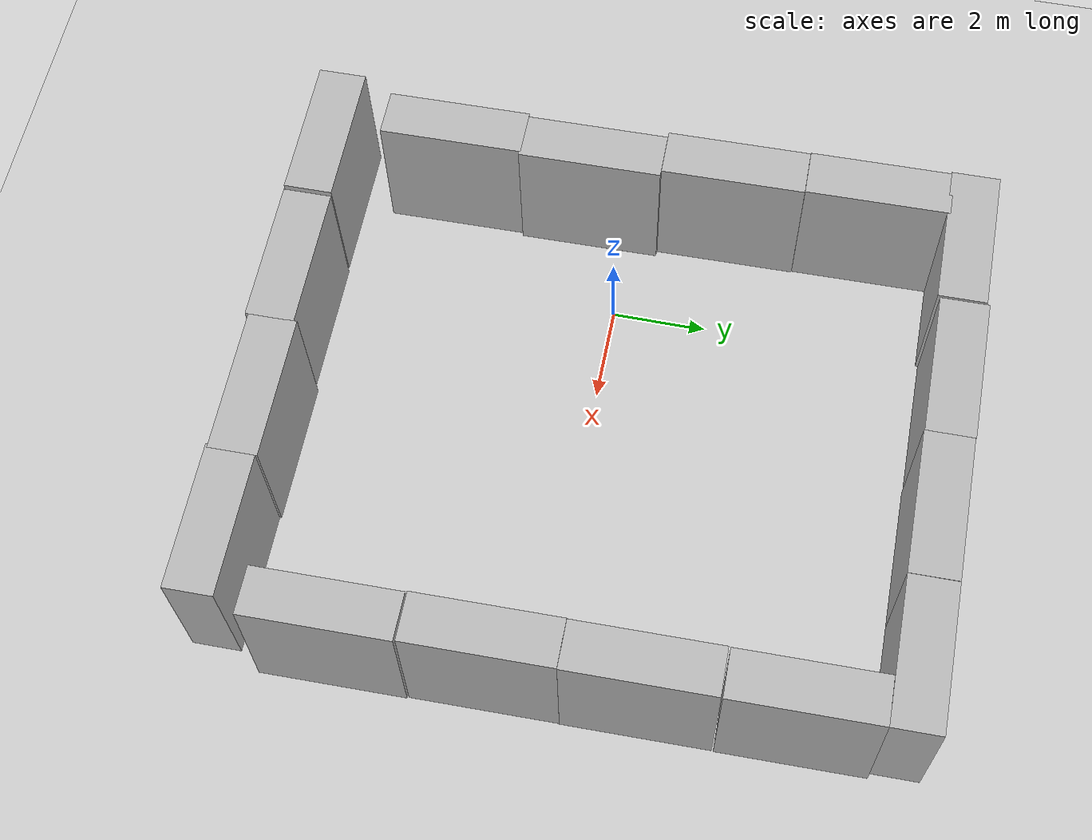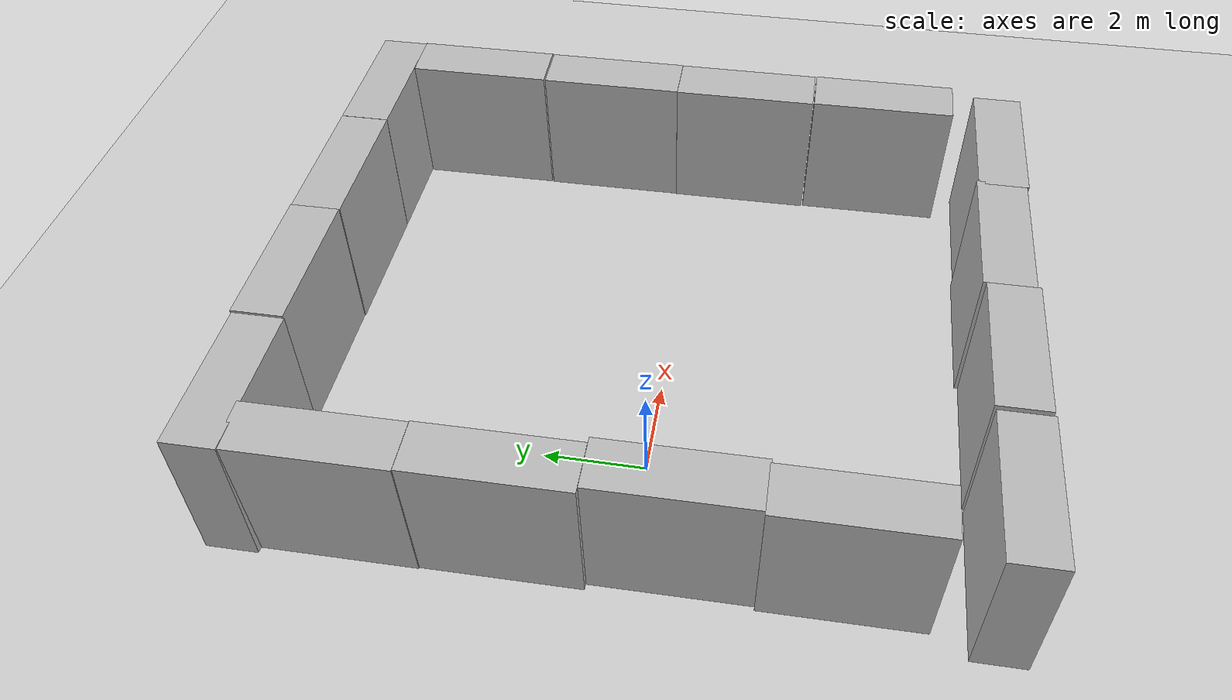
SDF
<sdf version="1.7">
 <world name="default">
  <light name="sun" type="directional">
   <pose>0 0 10 0 -0 0</pose>
   <diffuse>0.8 0.8 0.8 1</diffuse>
   <specular>0.2 0.2 0.2 1</specular>
   <attenuation>
    <range>1000</range>
    <constant>0.9</constant>
    <linear>0.01</linear>
    <quadratic>0.001</quadratic>
   </attenuation>
   <direction>-0.5 0.1 -0.9</direction>
   <spot><inner_angle>0</inner_angle><outer_angle>0</outer_angle><falloff>0</falloff></spot>
  </light>
  <model name="ground_plane">
   <static>1</static>
   <link name="link">
    <collision name="collision">
     <geometry><plane><normal>0 0 1</normal><size>100 100</size></plane></geometry>
     <surface>
      <contact><collide_bitmask>65535</collide_bitmask></contact>
      <friction><ode><mu>100</mu><mu2>50</mu2></ode></friction>
     </surface>
    </collision>
    <visual name="visual">
     <cast_shadows>0</cast_shadows>
     <geometry><plane><normal>0 0 1</normal><size>100 100</size></plane></geometry>
     <material>
      <script><uri>file://media/materials/scripts/gazebo.material</uri><name>Gazebo/Grey</name></script>
     </material>
    </visual>
   </link>
  </model>
  <gravity>0 0 -9.8</gravity>
  <magnetic_field>6e-06 2.3e-05 -4.2e-05</magnetic_field>
  <atmosphere type="adiabatic"/>
  <physics type="ode">
   <max_step_size>0.001</max_step_size>
   <real_time_factor>1</real_time_factor>
   <real_time_update_rate>1000</real_time_update_rate>
  </physics>
  <scene><ambient>0.4 0.4 0.4 1</ambient><background>0.7 0.7 0.7 1</background><shadows>1</shadows></scene>
  <spherical_coordinates>
   <surface_model>EARTH_WGS84</surface_model>
   <latitude_deg>0</latitude_deg>
   <longitude_deg>0</longitude_deg>
   <elevation>0</elevation>
   <heading_deg>0</heading_deg>
  </spherical_coordinates>
  <model name="brick_box_3x1x3">
   <static>1</static>
   <link name="chassis">
    <pose>0 0 1.5 0 -0 0</pose>
    <collision name="collision"><geometry><box><size>3 1 3</size></box></geometry></collision>
    <visual name="visual">
     <geometry><mesh><uri>model://brick_box_3x1x3/meshes/simple_box.dae</uri><scale>3 1 3</scale></mesh></geometry>
     <material>
      <script>
       <uri>model://brick_box_3x1x3/materials/scripts</uri>
       <uri>model://brick_box_3x1x3/materials/textures</uri>
       <name>BrickBox/Diffuse</name>
      </script>
     </material>
    </visual>
   </link>
   <pose>1.61996 7.1489 0 0 -0 0</pose>
  </model>
  <model name="brick_box_3x1x3_clone">
   <static>1</static>
   <link name="chassis">
    <pose>0 0 1.5 0 -0 0</pose>
    <collision name="collision"><geometry><box><size>3 1 3</size></box></geometry></collision>
    <visual name="visual">
     <geometry><mesh><uri>model://brick_box_3x1x3/meshes/simple_box.dae</uri><scale>3 1 3</scale></mesh></geometry>
     <material>
      <script>
       <uri>model://brick_box_3x1x3/materials/scripts</uri>
       <uri>model://brick_box_3x1x3/materials/textures</uri>
       <name>BrickBox/Diffuse</name>
      </script>
     </material>
    </visual>
   </link>
   <pose>4.6167 7.13347 0 0 -0 0</pose>
  </model>
  <model name="brick_box_3x1x3_clone_1">
   <static>1</static>
   <link name="chassis">
    <pose>0 0 1.5 0 -0 0</pose>
    <collision name="collision"><geometry><box><size>3 1 3</size></box></geometry></collision>
    <visual name="visual">
     <geometry><mesh><uri>model://brick_box_3x1x3/meshes/simple_box.dae</uri><scale>3 1 3</scale></mesh></geometry>
     <material>
      <script>
       <uri>model://brick_box_3x1x3/materials/scripts</uri>
       <uri>model://brick_box_3x1x3/materials/textures</uri>
       <name>BrickBox/Diffuse</name>
      </script>
     </material>
    </visual>
   </link>
   <pose>1.479 -6.42866 0 0 -0 0</pose>
  </model>
  <model name="brick_box_3x1x3_clone_2">
   <static>1</static>
   <link name="chassis">
    <pose>0 0 1.5 0 -0 0</pose>
    <collision name="collision"><geometry><box><size>3 1 3</size></box></geometry></collision>
    <visual name="visual">
     <geometry><mesh><uri>model://brick_box_3x1x3/meshes/simple_box.dae</uri><scale>3 1 3</scale></mesh></geometry>
     <material>
      <script>
       <uri>model://brick_box_3x1x3/materials/scripts</uri>
       <uri>model://brick_box_3x1x3/materials/textures</uri>
       <name>BrickBox/Diffuse</name>
      </script>
     </material>
    </visual>
   </link>
   <pose>4.47155 -6.35972 0 0 -0 0</pose>
  </model>
  <model name="brick_box_3x1x3_clone_3">
   <static>1</static>
   <link name="chassis">
    <pose>0 0 1.5 0 -0 0</pose>
    <collision name="collision"><geometry><box><size>3 1 3</size></box></geometry></collision>
    <visual name="visual">
     <geometry><mesh><uri>model://brick_box_3x1x3/meshes/simple_box.dae</uri><scale>3 1 3</scale></mesh></geometry>
     <material>
      <script>
       <uri>model://brick_box_3x1x3/materials/scripts</uri>
       <uri>model://brick_box_3x1x3/materials/textures</uri>
       <name>BrickBox/Diffuse</name>
      </script>
     </material>
    </visual>
   </link>
   <pose>7.39919 -6.39902 0 0 -0 0</pose>
  </model>
  <model name="brick_box_3x1x3_clone_5">
   <static>1</static>
   <link name="chassis">
    <pose>0 0 1.5 0 -0 0</pose>
    <collision name="collision"><geometry><box><size>3 1 3</size></box></geometry></collision>
    <visual name="visual">
     <geometry><mesh><uri>model://brick_box_3x1x3/meshes/simple_box.dae</uri><scale>3 1 3</scale></mesh></geometry>
     <material>
      <script>
       <uri>model://brick_box_3x1x3/materials/scripts</uri>
       <uri>model://brick_box_3x1x3/materials/textures</uri>
       <name>BrickBox/Diffuse</name>
      </script>
     </material>
    </visual>
   </link>
   <pose>-1.42157 7.09817 0 0 -0 0</pose>
  </model>
  <model name="brick_box_3x1x3_clone_clone">
   <static>1</static>
   <link name="chassis">
    <pose>0 0 1.5 0 -0 0</pose>
    <collision name="collision"><geometry><box><size>3 1 3</size></box></geometry></collision>
    <visual name="visual">
     <geometry><mesh><uri>model://brick_box_3x1x3/meshes/simple_box.dae</uri><scale>3 1 3</scale></mesh></geometry>
     <material>
      <script>
       <uri>model://brick_box_3x1x3/materials/scripts</uri>
       <uri>model://brick_box_3x1x3/materials/textures</uri>
       <name>BrickBox/Diffuse</name>
      </script>
     </material>
    </visual>
   </link>
   <pose>7.62047 7.13367 0 0 -0 0</pose>
  </model>
  <model name="brick_box_3x1x3_clone_1_clone">
   <static>1</static>
   <link name="chassis">
    <pose>0 0 1.5 0 -0 0</pose>
    <collision name="collision"><geometry><box><size>3 1 3</size></box></geometry></collision>
    <visual name="visual">
     <geometry><mesh><uri>model://brick_box_3x1x3/meshes/simple_box.dae</uri><scale>3 1 3</scale></mesh></geometry>
     <material>
      <script>
       <uri>model://brick_box_3x1x3/materials/scripts</uri>
       <uri>model://brick_box_3x1x3/materials/textures</uri>
       <name>BrickBox/Diffuse</name>
      </script>
     </material>
    </visual>
   </link>
   <pose>-1.60937 -6.44908 0 0 -0 0</pose>
  </model>
  <model name="brick_box_3x1x3_clone_clone_clone">
   <static>1</static>
   <link name="chassis">
    <pose>0 0 1.5 0 -0 0</pose>
    <collision name="collision"><geometry><box><size>3 1 3</size></box></geometry></collision>
    <visual name="visual">
     <geometry><mesh><uri>model://brick_box_3x1x3/meshes/simple_box.dae</uri><scale>3 1 3</scale></mesh></geometry>
     <material>
      <script>
       <uri>model://brick_box_3x1x3/materials/scripts</uri>
       <uri>model://brick_box_3x1x3/materials/textures</uri>
       <name>BrickBox/Diffuse</name>
      </script>
     </material>
    </visual>
   </link>
   <pose>8.73257 5.13172 0 -0.033388 -0 1.57435</pose>
  </model>
  <model name="brick_box_3x1x3_clone_clone_clone_clone">
   <static>1</static>
   <link name="chassis">
    <pose>0 0 1.5 0 -0 0</pose>
    <collision name="collision"><geometry><box><size>3 1 3</size></box></geometry></collision>
    <visual name="visual">
     <geometry><mesh><uri>model://brick_box_3x1x3/meshes/simple_box.dae</uri><scale>3 1 3</scale></mesh></geometry>
     <material>
      <script>
       <uri>model://brick_box_3x1x3/materials/scripts</uri>
       <uri>model://brick_box_3x1x3/materials/textures</uri>
       <name>BrickBox/Diffuse</name>
      </script>
     </material>
    </visual>
   </link>
   <pose>8.73278 2.0972 0 -0.033388 -0 1.57435</pose>
  </model>
  <model name="brick_box_3x1x3_clone_clone_clone_clone_0">
   <static>1</static>
   <link name="chassis">
    <pose>0 0 1.5 0 -0 0</pose>
    <collision name="collision"><geometry><box><size>3 1 3</size></box></geometry></collision>
    <visual name="visual">
     <geometry><mesh><uri>model://brick_box_3x1x3/meshes/simple_box.dae</uri><scale>3 1 3</scale></mesh></geometry>
     <material>
      <script>
       <uri>model://brick_box_3x1x3/materials/scripts</uri>
       <uri>model://brick_box_3x1x3/materials/textures</uri>
       <name>BrickBox/Diffuse</name>
      </script>
     </material>
    </visual>
   </link>
   <pose>8.73278 -0.906383 0 -0.033388 -0 1.57435</pose>
  </model>
  <model name="brick_box_3x1x3_clone_clone_clone_clone_1">
   <static>1</static>
   <link name="chassis">
    <pose>0 0 1.5 0 -0 0</pose>
    <collision name="collision"><geometry><box><size>3 1 3</size></box></geometry></collision>
    <visual name="visual">
     <geometry><mesh><uri>model://brick_box_3x1x3/meshes/simple_box.dae</uri><scale>3 1 3</scale></mesh></geometry>
     <material>
      <script>
       <uri>model://brick_box_3x1x3/materials/scripts</uri>
       <uri>model://brick_box_3x1x3/materials/textures</uri>
       <name>BrickBox/Diffuse</name>
      </script>
     </material>
    </visual>
   </link>
   <pose>8.76365 -3.94092 0 -0.033388 -0 1.57435</pose>
  </model>
  <model name="brick_box_3x1x3_clone_clone_clone_clone_2">
   <static>1</static>
   <link name="chassis">
    <pose>0 0 1.5 0 -0 0</pose>
    <collision name="collision"><geometry><box><size>3 1 3</size></box></geometry></collision>
    <visual name="visual">
     <geometry><mesh><uri>model://brick_box_3x1x3/meshes/simple_box.dae</uri><scale>3 1 3</scale></mesh></geometry>
     <material>
      <script>
       <uri>model://brick_box_3x1x3/materials/scripts</uri>
       <uri>model://brick_box_3x1x3/materials/textures</uri>
       <name>BrickBox/Diffuse</name>
      </script>
     </material>
    </visual>
   </link>
   <pose>-2.29073 5.16271 0 -0.033388 -0 1.57435</pose>
  </model>
  <model name="brick_box_3x1x3_clone_clone_clone_clone_3">
   <static>1</static>
   <link name="chassis">
    <pose>0 0 1.5 0 -0 0</pose>
    <collision name="collision"><geometry><box><size>3 1 3</size></box></geometry></collision>
    <visual name="visual">
     <geometry><mesh><uri>model://brick_box_3x1x3/meshes/simple_box.dae</uri><scale>3 1 3</scale></mesh></geometry>
     <material>
      <script>
       <uri>model://brick_box_3x1x3/materials/scripts</uri>
       <uri>model://brick_box_3x1x3/materials/textures</uri>
       <name>BrickBox/Diffuse</name>
      </script>
     </material>
    </visual>
   </link>
   <pose>-2.25965 2.15915 0 -0.033388 -0 1.57435</pose>
  </model>
  <model name="brick_box_3x1x3_clone_clone_clone_clone_4">
   <static>1</static>
   <link name="chassis">
    <pose>0 0 1.5 0 -0 0</pose>
    <collision name="collision"><geometry><box><size>3 1 3</size></box></geometry></collision>
    <visual name="visual">
     <geometry><mesh><uri>model://brick_box_3x1x3/meshes/simple_box.dae</uri><scale>3 1 3</scale></mesh></geometry>
     <material>
      <script>
       <uri>model://brick_box_3x1x3/materials/scripts</uri>
       <uri>model://brick_box_3x1x3/materials/textures</uri>
       <name>BrickBox/Diffuse</name>
      </script>
     </material>
    </visual>
   </link>
   <pose>-2.13573 -0.844435 0 -0.033388 -0 1.57435</pose>
  </model>
  <model name="brick_box_3x1x3_clone_clone_clone_clone_5">
   <static>1</static>
   <link name="chassis">
    <pose>0 0 1.5 0 -0 0</pose>
    <collision name="collision"><geometry><box><size>3 1 3</size></box></geometry></collision>
    <visual name="visual">
     <geometry><mesh><uri>model://brick_box_3x1x3/meshes/simple_box.dae</uri><scale>3 1 3</scale></mesh></geometry>
     <material>
      <script>
       <uri>model://brick_box_3x1x3/materials/scripts</uri>
       <uri>model://brick_box_3x1x3/materials/textures</uri>
       <name>BrickBox/Diffuse</name>
      </script>
     </material>
    </visual>
   </link>
   <pose>-2.19789 -3.81706 0 -0.033388 -0 1.57435</pose>
  </model>
 </world>
</sdf>
